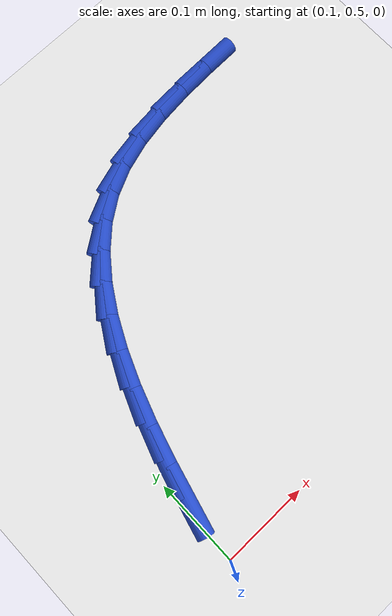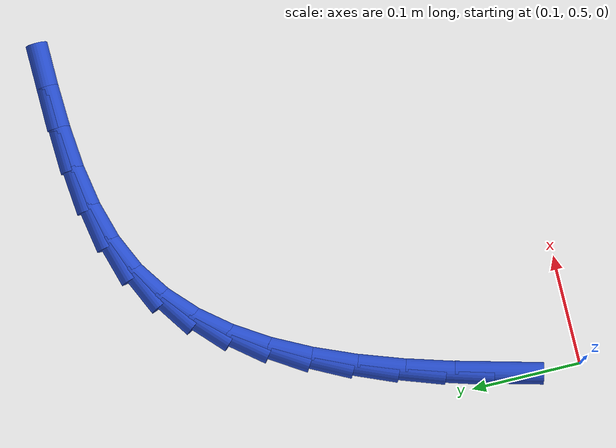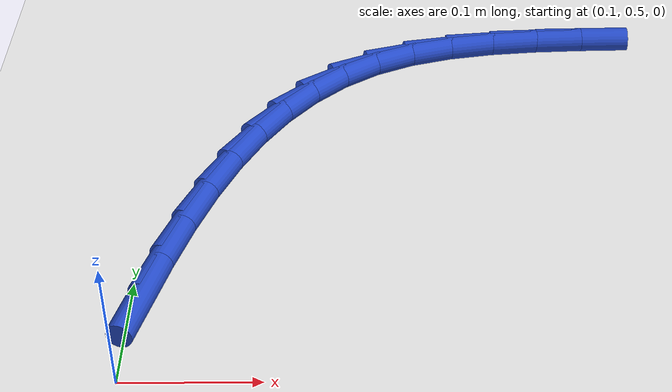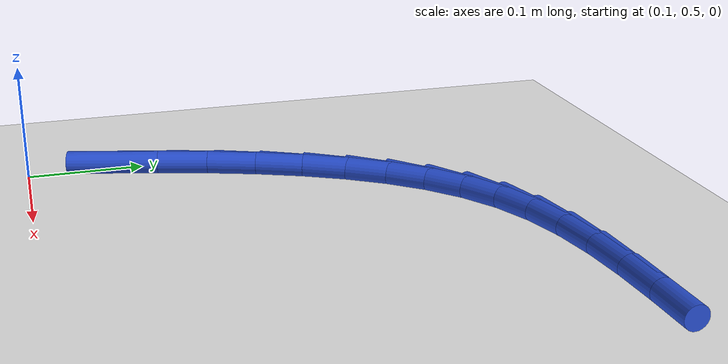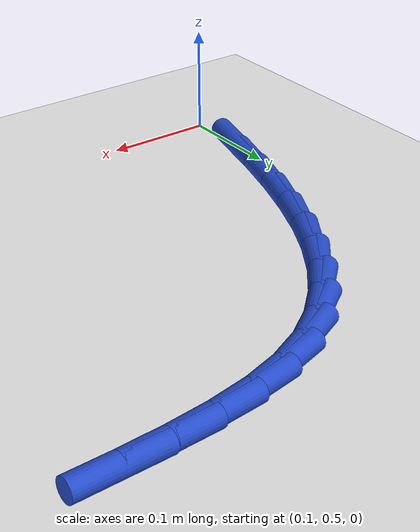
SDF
<sdf version="1.6">
 <world name="default">
  <model name="ground_plane">
   <static>1</static>
   <link name="link">
    <collision name="collision">
     <geometry><plane><normal>0 0 1</normal><size>100 100</size></plane></geometry>
     <surface><friction><ode><mu>100</mu><mu2>50</mu2></ode></friction></surface>
    </collision>
    <visual name="visual">
     <cast_shadows>0</cast_shadows>
     <geometry><plane><normal>0 0 1</normal><size>100 100</size></plane></geometry>
     <material>
      <script><uri>file://media/materials/scripts/gazebo.material</uri><name>Gazebo/WhiteGlow</name></script>
     </material>
    </visual>
   </link>
  </model>
  <model name="line">
   <link name="link_14">
    <pose>0.10839679553449232 0.573494161391919 0.01 0 1.57 1.3185766301756079</pose>
    <collision name="collision">
     <geometry><cylinder><radius>0.01</radius><length>0.08</length></cylinder></geometry>
    </collision>
    <visual name="visual">
     <material>
      <script><name>Gazebo/Blue</name><uri>file://media/materials/scripts/gazebo.material</uri></script>
     </material>
     <geometry><cylinder><radius>0.01</radius><length>0.08</length></cylinder></geometry>
    </visual>
   </link>
   <link name="link_15">
    <pose>0.11944138920366458 0.6163512210840759 0.01 0 1.57 1.282863482189582</pose>
    <collision name="collision">
     <geometry><cylinder><radius>0.01</radius><length>0.08</length></cylinder></geometry>
    </collision>
    <visual name="visual">
     <material>
      <script><name>Gazebo/Blue</name><uri>file://media/materials/scripts/gazebo.material</uri></script>
     </material>
     <geometry><cylinder><radius>0.01</radius><length>0.08</length></cylinder></geometry>
    </visual>
   </link>
   <link name="link_16">
    <pose>0.1317201404029008 0.6578106670109142 0.01 0 1.57 1.2363547287437564</pose>
    <collision name="collision">
     <geometry><cylinder><radius>0.01</radius><length>0.08</length></cylinder></geometry>
    </collision>
    <visual name="visual">
     <material>
      <script><name>Gazebo/Blue</name><uri>file://media/materials/scripts/gazebo.material</uri></script>
     </material>
     <geometry><cylinder><radius>0.01</radius><length>0.08</length></cylinder></geometry>
    </visual>
   </link>
   <link name="link_17">
    <pose>0.14548951649327824 0.6974353224505824 0.01 0 1.57 1.177081291371161</pose>
    <collision name="collision">
     <geometry><cylinder><radius>0.01</radius><length>0.08</length></cylinder></geometry>
    </collision>
    <visual name="visual">
     <material>
      <script><name>Gazebo/Blue</name><uri>file://media/materials/scripts/gazebo.material</uri></script>
     </material>
     <geometry><cylinder><radius>0.01</radius><length>0.08</length></cylinder></geometry>
    </visual>
   </link>
   <link name="link_18">
    <pose>0.16100598483587425 0.734788010681229 0.01 0 1.57 1.1025810179308921</pose>
    <collision name="collision">
     <geometry><cylinder><radius>0.01</radius><length>0.08</length></cylinder></geometry>
    </collision>
    <visual name="visual">
     <material>
      <script><name>Gazebo/Blue</name><uri>file://media/materials/scripts/gazebo.material</uri></script>
     </material>
     <geometry><cylinder><radius>0.01</radius><length>0.08</length></cylinder></geometry>
    </visual>
   </link>
   <link name="link_19">
    <pose>0.178526012791766 0.7694315549810032 0.01 0 1.57 1.0100472046592999</pose>
    <collision name="collision">
     <geometry><cylinder><radius>0.01</radius><length>0.08</length></cylinder></geometry>
    </collision>
    <visual name="visual">
     <material>
      <script><name>Gazebo/Blue</name><uri>file://media/materials/scripts/gazebo.material</uri></script>
     </material>
     <geometry><cylinder><radius>0.01</radius><length>0.08</length></cylinder></geometry>
    </visual>
   </link>
   <link name="link_20">
    <pose>0.19830606772203088 0.8009287786280536 0.01 0 1.57 0.8968079751505506</pose>
    <collision name="collision">
     <geometry><cylinder><radius>0.01</radius><length>0.08</length></cylinder></geometry>
    </collision>
    <visual name="visual">
     <material>
      <script><name>Gazebo/Blue</name><uri>file://media/materials/scripts/gazebo.material</uri></script>
     </material>
     <geometry><cylinder><radius>0.01</radius><length>0.08</length></cylinder></geometry>
    </visual>
   </link>
   <link name="link_21">
    <pose>0.22060261698774591 0.8288425049005284 0.01 0 1.57 0.7613750651972374</pose>
    <collision name="collision">
     <geometry><cylinder><radius>0.01</radius><length>0.08</length></cylinder></geometry>
    </collision>
    <visual name="visual">
     <material>
      <script><name>Gazebo/Blue</name><uri>file://media/materials/scripts/gazebo.material</uri></script>
     </material>
     <geometry><cylinder><radius>0.01</radius><length>0.08</length></cylinder></geometry>
    </visual>
   </link>
   <link name="link_22">
    <pose>0.24567212794998883 0.8527355570765769 0.01 0 1.57 0.6051136358261643</pose>
    <collision name="collision">
     <geometry><cylinder><radius>0.01</radius><length>0.08</length></cylinder></geometry>
    </collision>
    <visual name="visual">
     <material>
      <script><name>Gazebo/Blue</name><uri>file://media/materials/scripts/gazebo.material</uri></script>
     </material>
     <geometry><cylinder><radius>0.01</radius><length>0.08</length></cylinder></geometry>
    </visual>
   </link>
   <link name="link_23">
    <pose>0.2737710679698366 0.8721707584343474 0.01 0 1.57 0.4364322153317377</pose>
    <collision name="collision">
     <geometry><cylinder><radius>0.01</radius><length>0.08</length></cylinder></geometry>
    </collision>
    <visual name="visual">
     <material>
      <script><name>Gazebo/Blue</name><uri>file://media/materials/scripts/gazebo.material</uri></script>
     </material>
     <geometry><cylinder><radius>0.01</radius><length>0.08</length></cylinder></geometry>
    </visual>
   </link>
   <link name="link_24">
    <pose>0.30511135450970317 0.8867887860084936 0.01 0 1.57 0.28859946413243415</pose>
    <collision name="collision">
     <geometry><cylinder><radius>0.01</radius><length>0.08</length></cylinder></geometry>
    </collision>
    <visual name="visual">
     <material>
      <script><name>Gazebo/Blue</name><uri>file://media/materials/scripts/gazebo.material</uri></script>
     </material>
     <geometry><cylinder><radius>0.01</radius><length>0.08</length></cylinder></geometry>
    </visual>
   </link>
   <link name="link_25">
    <pose>0.3394704301597668 0.8969895890638053 0.01 0 1.57 0.17725807708848731</pose>
    <collision name="collision">
     <geometry><cylinder><radius>0.01</radius><length>0.08</length></cylinder></geometry>
    </collision>
    <visual name="visual">
     <material>
      <script><name>Gazebo/Blue</name><uri>file://media/materials/scripts/gazebo.material</uri></script>
     </material>
     <geometry><cylinder><radius>0.01</radius><length>0.08</length></cylinder></geometry>
    </visual>
   </link>
   <link name="link_26">
    <pose>0.37638054756794925 0.9036016017468476 0.01 0 1.57 0.09858731887423465</pose>
    <collision name="collision">
     <geometry><cylinder><radius>0.01</radius><length>0.08</length></cylinder></geometry>
    </collision>
    <visual name="visual">
     <material>
      <script><name>Gazebo/Blue</name><uri>file://media/materials/scripts/gazebo.material</uri></script>
     </material>
     <geometry><cylinder><radius>0.01</radius><length>0.08</length></cylinder></geometry>
    </visual>
   </link>
   <link name="link_27">
    <pose>0.41537119585321614 0.9074580876452575 0.01 0 1.57 0.04760417692412098</pose>
    <collision name="collision">
     <geometry><cylinder><radius>0.01</radius><length>0.08</length></cylinder></geometry>
    </collision>
    <visual name="visual">
     <material>
      <script><name>Gazebo/Blue</name><uri>file://media/materials/scripts/gazebo.material</uri></script>
     </material>
     <geometry><cylinder><radius>0.01</radius><length>0.08</length></cylinder></geometry>
    </visual>
   </link>
   <link name="link_28">
    <pose>0.45597186413453394 0.9093923103466738 0.01 0 1.57 0.02024686156113432</pose>
    <collision name="collision">
     <geometry><cylinder><radius>0.01</radius><length>0.08</length></cylinder></geometry>
    </collision>
    <visual name="visual">
     <material>
      <script><name>Gazebo/Blue</name><uri>file://media/materials/scripts/gazebo.material</uri></script>
     </material>
     <geometry><cylinder><radius>0.01</radius><length>0.08</length></cylinder></geometry>
    </visual>
   </link>
  </model>
 </world>
</sdf>
